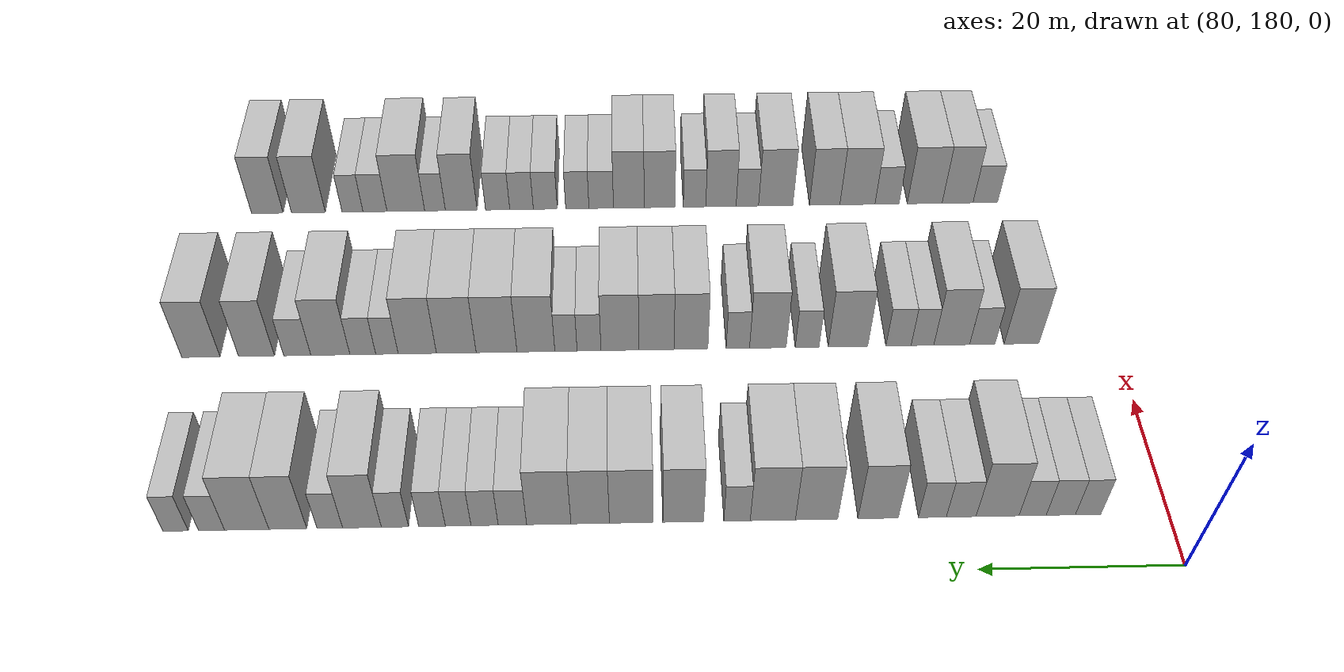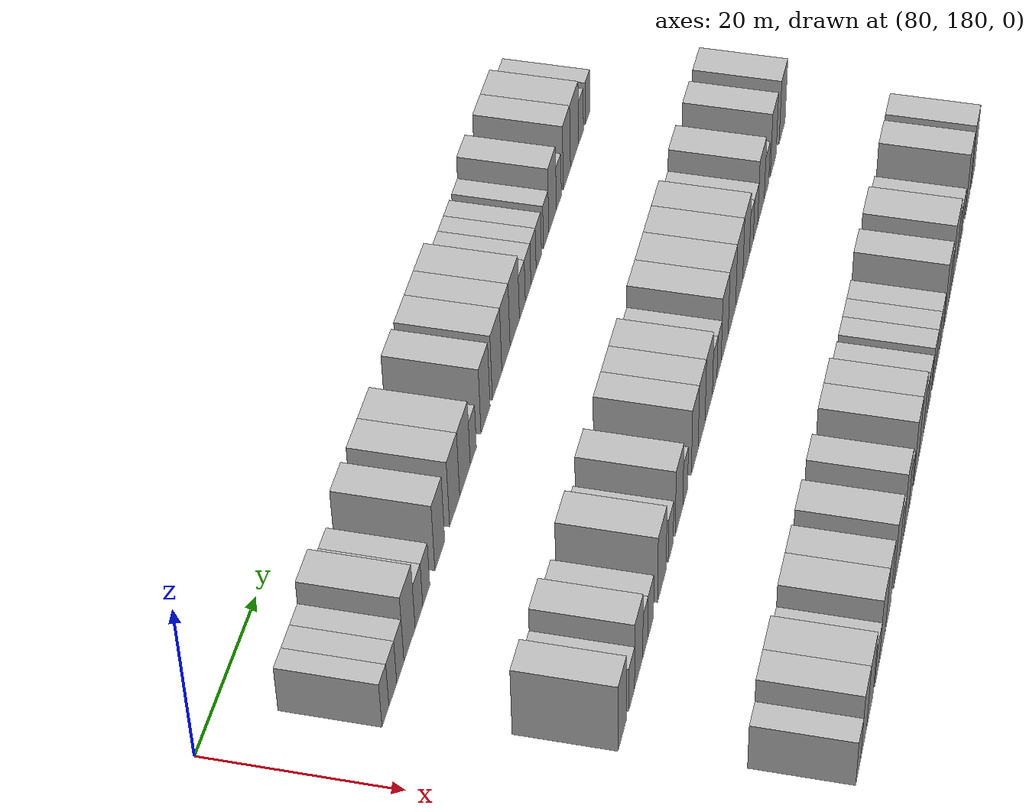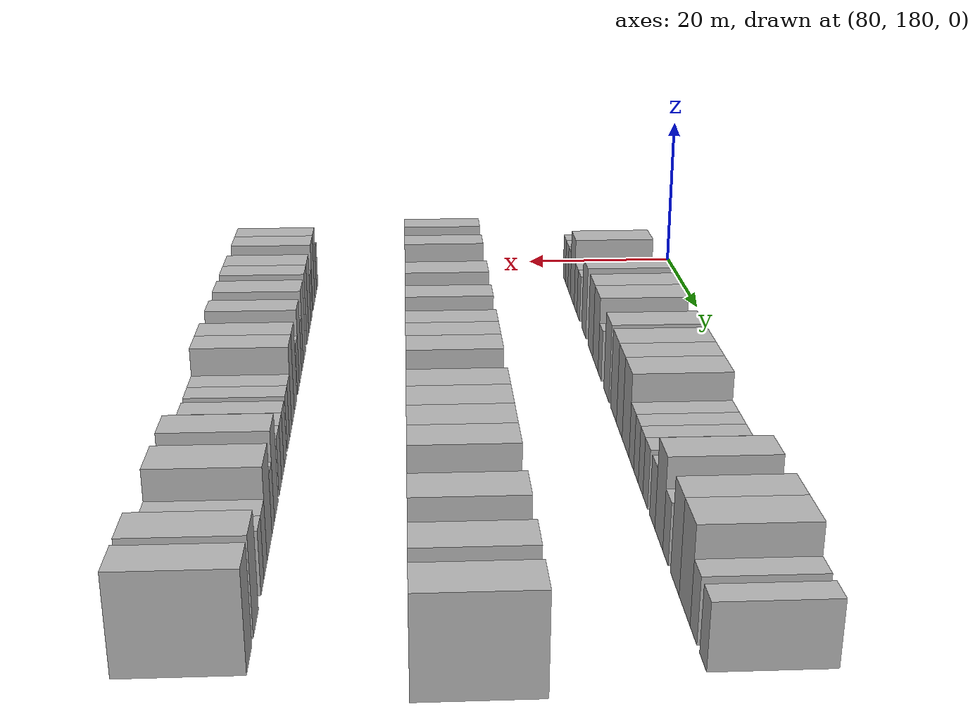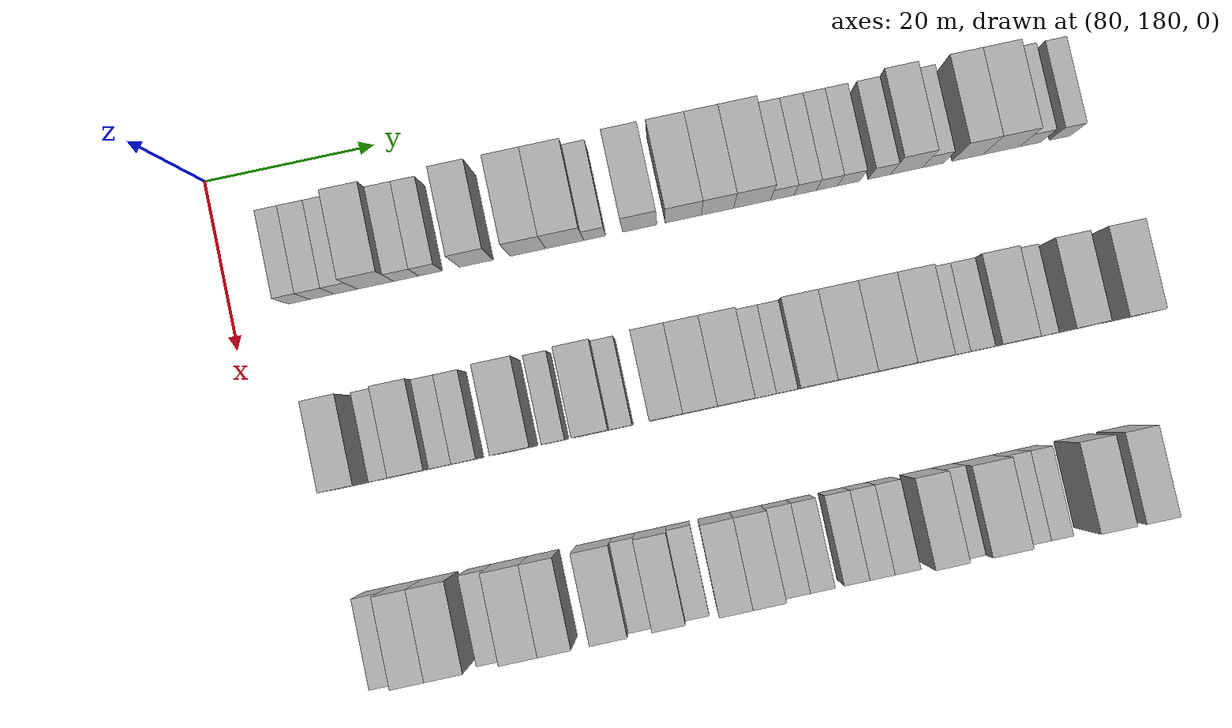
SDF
<sdf version="1.6">
 <world name="default">
  <model name="building_733">
   <static>1</static>
   <pose>91.0000 188.0215 0 0.000000 0.000000 0.000000</pose>
   <link name="link">
    <pose>0 0 3.00 0 0 0</pose>
    <collision name="collision"><geometry><box><size>10.0000 2.5290 6.0000</size></box></geometry></collision>
    <visual name="visual">
     <cast_shadows>0</cast_shadows>
     <geometry><box><size>10.0000 2.5290 6.0000</size></box></geometry>
     <material>
      <script>
       <uri>model://HANNAS_wall/materials/scripts</uri>
       <uri>model://HANNAS_wall/materials/textures</uri>
       <name>vrc/HANNAS_wall</name>
      </script>
     </material>
    </visual>
   </link>
  </model>
  <model name="building_734">
   <static>1</static>
   <pose>91.0000 190.7353 0 0.000000 0.000000 0.000000</pose>
   <link name="link">
    <pose>0 0 3.00 0 0 0</pose>
    <collision name="collision"><geometry><box><size>10.0000 2.8986 6.0000</size></box></geometry></collision>
    <visual name="visual">
     <cast_shadows>0</cast_shadows>
     <geometry><box><size>10.0000 2.8986 6.0000</size></box></geometry>
     <material>
      <script>
       <uri>model://HANNAS_wall/materials/scripts</uri>
       <uri>model://HANNAS_wall/materials/textures</uri>
       <name>vrc/HANNAS_wall</name>
      </script>
     </material>
    </visual>
   </link>
  </model>
  <model name="building_735">
   <static>1</static>
   <pose>91.0000 193.5377 0 0.000000 0.000000 0.000000</pose>
   <link name="link">
    <pose>0 0 3.00 0 0 0</pose>
    <collision name="collision"><geometry><box><size>10.0000 2.7062 6.0000</size></box></geometry></collision>
    <visual name="visual">
     <cast_shadows>0</cast_shadows>
     <geometry><box><size>10.0000 2.7062 6.0000</size></box></geometry>
     <material>
      <script>
       <uri>model://HANNAS_wall/materials/scripts</uri>
       <uri>model://HANNAS_wall/materials/textures</uri>
       <name>vrc/HANNAS_wall</name>
      </script>
     </material>
    </visual>
   </link>
  </model>
  <model name="building_736">
   <static>1</static>
   <pose>91.0000 197.0207 0 0.000000 0.000000 0.000000</pose>
   <link name="link">
    <pose>0 0 4.50 0 0 0</pose>
    <collision name="collision"><geometry><box><size>10.0000 4.2599 9.0000</size></box></geometry></collision>
    <visual name="visual">
     <cast_shadows>0</cast_shadows>
     <geometry><box><size>10.0000 4.2599 9.0000</size></box></geometry>
     <material>
      <script>
       <uri>model://HANNAS_wall/materials/scripts</uri>
       <uri>model://HANNAS_wall/materials/textures</uri>
       <name>vrc/HANNAS_wall</name>
      </script>
     </material>
    </visual>
   </link>
  </model>
  <model name="building_737">
   <static>1</static>
   <pose>91.0000 200.6215 0 0.000000 0.000000 0.000000</pose>
   <link name="link">
    <pose>0 0 3.00 0 0 0</pose>
    <collision name="collision"><geometry><box><size>10.0000 2.9417 6.0000</size></box></geometry></collision>
    <visual name="visual">
     <cast_shadows>0</cast_shadows>
     <geometry><box><size>10.0000 2.9417 6.0000</size></box></geometry>
     <material>
      <script>
       <uri>model://HANNAS_wall/materials/scripts</uri>
       <uri>model://HANNAS_wall/materials/textures</uri>
       <name>vrc/HANNAS_wall</name>
      </script>
     </material>
    </visual>
   </link>
  </model>
  <model name="building_738">
   <static>1</static>
   <pose>91.0000 203.4762 0 0.000000 0.000000 0.000000</pose>
   <link name="link">
    <pose>0 0 3.00 0 0 0</pose>
    <collision name="collision"><geometry><box><size>10.0000 2.7677 6.0000</size></box></geometry></collision>
    <visual name="visual">
     <cast_shadows>0</cast_shadows>
     <geometry><box><size>10.0000 2.7677 6.0000</size></box></geometry>
     <material>
      <script>
       <uri>model://HANNAS_wall/materials/scripts</uri>
       <uri>model://HANNAS_wall/materials/textures</uri>
       <name>vrc/HANNAS_wall</name>
      </script>
     </material>
    </visual>
   </link>
  </model>
  <model name="building_739">
   <static>1</static>
   <pose>91.0000 208.8545 0 0.000000 0.000000 0.000000</pose>
   <link name="link">
    <pose>0 0 4.50 0 0 0</pose>
    <collision name="collision"><geometry><box><size>10.0000 3.9889 9.0000</size></box></geometry></collision>
    <visual name="visual">
     <cast_shadows>0</cast_shadows>
     <geometry><box><size>10.0000 3.9889 9.0000</size></box></geometry>
     <material>
      <script>
       <uri>model://HANNAS_wall/materials/scripts</uri>
       <uri>model://HANNAS_wall/materials/textures</uri>
       <name>vrc/HANNAS_wall</name>
      </script>
     </material>
    </visual>
   </link>
  </model>
  <model name="building_740">
   <static>1</static>
   <pose>91.0000 214.9340 0 0.000000 0.000000 0.000000</pose>
   <link name="link">
    <pose>0 0 4.50 0 0 0</pose>
    <collision name="collision"><geometry><box><size>10.0000 4.1702 9.0000</size></box></geometry></collision>
    <visual name="visual">
     <cast_shadows>0</cast_shadows>
     <geometry><box><size>10.0000 4.1702 9.0000</size></box></geometry>
     <material>
      <script>
       <uri>model://HANNAS_wall/materials/scripts</uri>
       <uri>model://HANNAS_wall/materials/textures</uri>
       <name>vrc/HANNAS_wall</name>
      </script>
     </material>
    </visual>
   </link>
  </model>
  <model name="building_741">
   <static>1</static>
   <pose>91.0000 219.2522 0 0.000000 0.000000 0.000000</pose>
   <link name="link">
    <pose>0 0 4.50 0 0 0</pose>
    <collision name="collision"><geometry><box><size>10.0000 4.4662 9.0000</size></box></geometry></collision>
    <visual name="visual">
     <cast_shadows>0</cast_shadows>
     <geometry><box><size>10.0000 4.4662 9.0000</size></box></geometry>
     <material>
      <script>
       <uri>model://HANNAS_wall/materials/scripts</uri>
       <uri>model://HANNAS_wall/materials/textures</uri>
       <name>vrc/HANNAS_wall</name>
      </script>
     </material>
    </visual>
   </link>
  </model>
  <model name="building_742">
   <static>1</static>
   <pose>91.0000 222.7854 0 0.000000 0.000000 0.000000</pose>
   <link name="link">
    <pose>0 0 3.00 0 0 0</pose>
    <collision name="collision"><geometry><box><size>10.0000 2.6002 6.0000</size></box></geometry></collision>
    <visual name="visual">
     <cast_shadows>0</cast_shadows>
     <geometry><box><size>10.0000 2.6002 6.0000</size></box></geometry>
     <material>
      <script>
       <uri>model://HANNAS_wall/materials/scripts</uri>
       <uri>model://HANNAS_wall/materials/textures</uri>
       <name>vrc/HANNAS_wall</name>
      </script>
     </material>
    </visual>
   </link>
  </model>
  <model name="building_743">
   <static>1</static>
   <pose>91.0000 228.0928 0 0.000000 0.000000 0.000000</pose>
   <link name="link">
    <pose>0 0 4.50 0 0 0</pose>
    <collision name="collision"><geometry><box><size>10.0000 4.0147 9.0000</size></box></geometry></collision>
    <visual name="visual">
     <cast_shadows>0</cast_shadows>
     <geometry><box><size>10.0000 4.0147 9.0000</size></box></geometry>
     <material>
      <script>
       <uri>model://HANNAS_wall/materials/scripts</uri>
       <uri>model://HANNAS_wall/materials/textures</uri>
       <name>vrc/HANNAS_wall</name>
      </script>
     </material>
    </visual>
   </link>
  </model>
  <model name="building_744">
   <static>1</static>
   <pose>91.0000 233.2284 0 0.000000 0.000000 0.000000</pose>
   <link name="link">
    <pose>0 0 4.50 0 0 0</pose>
    <collision name="collision"><geometry><box><size>10.0000 4.2566 9.0000</size></box></geometry></collision>
    <visual name="visual">
     <cast_shadows>0</cast_shadows>
     <geometry><box><size>10.0000 4.2566 9.0000</size></box></geometry>
     <material>
      <script>
       <uri>model://HANNAS_wall/materials/scripts</uri>
       <uri>model://HANNAS_wall/materials/textures</uri>
       <name>vrc/HANNAS_wall</name>
      </script>
     </material>
    </visual>
   </link>
  </model>
  <model name="building_745">
   <static>1</static>
   <pose>91.0000 237.2494 0 0.000000 0.000000 0.000000</pose>
   <link name="link">
    <pose>0 0 4.50 0 0 0</pose>
    <collision name="collision"><geometry><box><size>10.0000 3.7855 9.0000</size></box></geometry></collision>
    <visual name="visual">
     <cast_shadows>0</cast_shadows>
     <geometry><box><size>10.0000 3.7855 9.0000</size></box></geometry>
     <material>
      <script>
       <uri>model://HANNAS_wall/materials/scripts</uri>
       <uri>model://HANNAS_wall/materials/textures</uri>
       <name>vrc/HANNAS_wall</name>
      </script>
     </material>
    </visual>
   </link>
  </model>
  <model name="building_746">
   <static>1</static>
   <pose>91.0000 241.3184 0 0.000000 0.000000 0.000000</pose>
   <link name="link">
    <pose>0 0 4.50 0 0 0</pose>
    <collision name="collision"><geometry><box><size>10.0000 4.3525 9.0000</size></box></geometry></collision>
    <visual name="visual">
     <cast_shadows>0</cast_shadows>
     <geometry><box><size>10.0000 4.3525 9.0000</size></box></geometry>
     <material>
      <script>
       <uri>model://HANNAS_wall/materials/scripts</uri>
       <uri>model://HANNAS_wall/materials/textures</uri>
       <name>vrc/HANNAS_wall</name>
      </script>
     </material>
    </visual>
   </link>
  </model>
  <model name="building_747">
   <static>1</static>
   <pose>91.0000 244.8905 0 0.000000 0.000000 0.000000</pose>
   <link name="link">
    <pose>0 0 3.00 0 0 0</pose>
    <collision name="collision"><geometry><box><size>10.0000 2.7918 6.0000</size></box></geometry></collision>
    <visual name="visual">
     <cast_shadows>0</cast_shadows>
     <geometry><box><size>10.0000 2.7918 6.0000</size></box></geometry>
     <material>
      <script>
       <uri>model://HANNAS_wall/materials/scripts</uri>
       <uri>model://HANNAS_wall/materials/textures</uri>
       <name>vrc/HANNAS_wall</name>
      </script>
     </material>
    </visual>
   </link>
  </model>
  <model name="building_748">
   <static>1</static>
   <pose>91.0000 247.6210 0 0.000000 0.000000 0.000000</pose>
   <link name="link">
    <pose>0 0 3.00 0 0 0</pose>
    <collision name="collision"><geometry><box><size>10.0000 2.6692 6.0000</size></box></geometry></collision>
    <visual name="visual">
     <cast_shadows>0</cast_shadows>
     <geometry><box><size>10.0000 2.6692 6.0000</size></box></geometry>
     <material>
      <script>
       <uri>model://HANNAS_wall/materials/scripts</uri>
       <uri>model://HANNAS_wall/materials/textures</uri>
       <name>vrc/HANNAS_wall</name>
      </script>
     </material>
    </visual>
   </link>
  </model>
  <model name="building_749">
   <static>1</static>
   <pose>91.0000 250.2139 0 0.000000 0.000000 0.000000</pose>
   <link name="link">
    <pose>0 0 3.00 0 0 0</pose>
    <collision name="collision"><geometry><box><size>10.0000 2.5166 6.0000</size></box></geometry></collision>
    <visual name="visual">
     <cast_shadows>0</cast_shadows>
     <geometry><box><size>10.0000 2.5166 6.0000</size></box></geometry>
     <material>
      <script>
       <uri>model://HANNAS_wall/materials/scripts</uri>
       <uri>model://HANNAS_wall/materials/textures</uri>
       <name>vrc/HANNAS_wall</name>
      </script>
     </material>
    </visual>
   </link>
  </model>
  <model name="building_750">
   <static>1</static>
   <pose>91.0000 252.7789 0 0.000000 0.000000 0.000000</pose>
   <link name="link">
    <pose>0 0 3.00 0 0 0</pose>
    <collision name="collision"><geometry><box><size>10.0000 2.6133 6.0000</size></box></geometry></collision>
    <visual name="visual">
     <cast_shadows>0</cast_shadows>
     <geometry><box><size>10.0000 2.6133 6.0000</size></box></geometry>
     <material>
      <script>
       <uri>model://HANNAS_wall/materials/scripts</uri>
       <uri>model://HANNAS_wall/materials/textures</uri>
       <name>vrc/HANNAS_wall</name>
      </script>
     </material>
    </visual>
   </link>
  </model>
  <model name="building_751">
   <static>1</static>
   <pose>91.0000 256.4146 0 0.000000 0.000000 0.000000</pose>
   <link name="link">
    <pose>0 0 3.00 0 0 0</pose>
    <collision name="collision"><geometry><box><size>10.0000 2.6583 6.0000</size></box></geometry></collision>
    <visual name="visual">
     <cast_shadows>0</cast_shadows>
     <geometry><box><size>10.0000 2.6583 6.0000</size></box></geometry>
     <material>
      <script>
       <uri>model://HANNAS_wall/materials/scripts</uri>
       <uri>model://HANNAS_wall/materials/textures</uri>
       <name>vrc/HANNAS_wall</name>
      </script>
     </material>
    </visual>
   </link>
  </model>
  <model name="building_752">
   <static>1</static>
   <pose>91.0000 259.6410 0 0.000000 0.000000 0.000000</pose>
   <link name="link">
    <pose>0 0 4.50 0 0 0</pose>
    <collision name="collision"><geometry><box><size>10.0000 3.7944 9.0000</size></box></geometry></collision>
    <visual name="visual">
     <cast_shadows>0</cast_shadows>
     <geometry><box><size>10.0000 3.7944 9.0000</size></box></geometry>
     <material>
      <script>
       <uri>model://HANNAS_wall/materials/scripts</uri>
       <uri>model://HANNAS_wall/materials/textures</uri>
       <name>vrc/HANNAS_wall</name>
      </script>
     </material>
    </visual>
   </link>
  </model>
  <model name="building_753">
   <static>1</static>
   <pose>91.0000 262.7910 0 0.000000 0.000000 0.000000</pose>
   <link name="link">
    <pose>0 0 3.00 0 0 0</pose>
    <collision name="collision"><geometry><box><size>10.0000 2.5055 6.0000</size></box></geometry></collision>
    <visual name="visual">
     <cast_shadows>0</cast_shadows>
     <geometry><box><size>10.0000 2.5055 6.0000</size></box></geometry>
     <material>
      <script>
       <uri>model://HANNAS_wall/materials/scripts</uri>
       <uri>model://HANNAS_wall/materials/textures</uri>
       <name>vrc/HANNAS_wall</name>
      </script>
     </material>
    </visual>
   </link>
  </model>
  <model name="building_754">
   <static>1</static>
   <pose>91.0000 266.8907 0 0.000000 0.000000 0.000000</pose>
   <link name="link">
    <pose>0 0 4.50 0 0 0</pose>
    <collision name="collision"><geometry><box><size>10.0000 3.6940 9.0000</size></box></geometry></collision>
    <visual name="visual">
     <cast_shadows>0</cast_shadows>
     <geometry><box><size>10.0000 3.6940 9.0000</size></box></geometry>
     <material>
      <script>
       <uri>model://HANNAS_wall/materials/scripts</uri>
       <uri>model://HANNAS_wall/materials/textures</uri>
       <name>vrc/HANNAS_wall</name>
      </script>
     </material>
    </visual>
   </link>
  </model>
  <model name="building_755">
   <static>1</static>
   <pose>91.0000 270.9099 0 0.000000 0.000000 0.000000</pose>
   <link name="link">
    <pose>0 0 4.50 0 0 0</pose>
    <collision name="collision"><geometry><box><size>10.0000 4.3444 9.0000</size></box></geometry></collision>
    <visual name="visual">
     <cast_shadows>0</cast_shadows>
     <geometry><box><size>10.0000 4.3444 9.0000</size></box></geometry>
     <material>
      <script>
       <uri>model://HANNAS_wall/materials/scripts</uri>
       <uri>model://HANNAS_wall/materials/textures</uri>
       <name>vrc/HANNAS_wall</name>
      </script>
     </material>
    </visual>
   </link>
  </model>
  <model name="building_756">
   <static>1</static>
   <pose>91.0000 274.3528 0 0.000000 0.000000 0.000000</pose>
   <link name="link">
    <pose>0 0 3.00 0 0 0</pose>
    <collision name="collision"><geometry><box><size>10.0000 2.5415 6.0000</size></box></geometry></collision>
    <visual name="visual">
     <cast_shadows>0</cast_shadows>
     <geometry><box><size>10.0000 2.5415 6.0000</size></box></geometry>
     <material>
      <script>
       <uri>model://HANNAS_wall/materials/scripts</uri>
       <uri>model://HANNAS_wall/materials/textures</uri>
       <name>vrc/HANNAS_wall</name>
      </script>
     </material>
    </visual>
   </link>
  </model>
  <model name="building_757">
   <static>1</static>
   <pose>91.0000 277.8508 0 0.000000 0.000000 0.000000</pose>
   <link name="link">
    <pose>0 0 3.00 0 0 0</pose>
    <collision name="collision"><geometry><box><size>10.0000 2.4544 6.0000</size></box></geometry></collision>
    <visual name="visual">
     <cast_shadows>0</cast_shadows>
     <geometry><box><size>10.0000 2.4544 6.0000</size></box></geometry>
     <material>
      <script>
       <uri>model://HANNAS_wall/materials/scripts</uri>
       <uri>model://HANNAS_wall/materials/textures</uri>
       <name>vrc/HANNAS_wall</name>
      </script>
     </material>
    </visual>
   </link>
  </model>
  <model name="building_935">
   <static>1</static>
   <pose>113.0000 190.2759 0 0.000000 0.000000 0.000000</pose>
   <link name="link">
    <pose>0 0 4.50 0 0 0</pose>
    <collision name="collision"><geometry><box><size>10.0000 3.8291 9.0000</size></box></geometry></collision>
    <visual name="visual">
     <cast_shadows>0</cast_shadows>
     <geometry><box><size>10.0000 3.8291 9.0000</size></box></geometry>
     <material>
      <script>
       <uri>model://HANNAS_wall/materials/scripts</uri>
       <uri>model://HANNAS_wall/materials/textures</uri>
       <name>vrc/HANNAS_wall</name>
      </script>
     </material>
    </visual>
   </link>
  </model>
  <model name="building_936">
   <static>1</static>
   <pose>113.0000 194.5804 0 0.000000 0.000000 0.000000</pose>
   <link name="link">
    <pose>0 0 3.00 0 0 0</pose>
    <collision name="collision"><geometry><box><size>10.0000 2.7800 6.0000</size></box></geometry></collision>
    <visual name="visual">
     <cast_shadows>0</cast_shadows>
     <geometry><box><size>10.0000 2.7800 6.0000</size></box></geometry>
     <material>
      <script>
       <uri>model://HANNAS_wall/materials/scripts</uri>
       <uri>model://HANNAS_wall/materials/textures</uri>
       <name>vrc/HANNAS_wall</name>
      </script>
     </material>
    </visual>
   </link>
  </model>
  <model name="building_937">
   <static>1</static>
   <pose>113.0000 197.9368 0 0.000000 0.000000 0.000000</pose>
   <link name="link">
    <pose>0 0 4.50 0 0 0</pose>
    <collision name="collision"><geometry><box><size>10.0000 3.9327 9.0000</size></box></geometry></collision>
    <visual name="visual">
     <cast_shadows>0</cast_shadows>
     <geometry><box><size>10.0000 3.9327 9.0000</size></box></geometry>
     <material>
      <script>
       <uri>model://HANNAS_wall/materials/scripts</uri>
       <uri>model://HANNAS_wall/materials/textures</uri>
       <name>vrc/HANNAS_wall</name>
      </script>
     </material>
    </visual>
   </link>
  </model>
  <model name="building_938">
   <static>1</static>
   <pose>113.0000 201.1462 0 0.000000 0.000000 0.000000</pose>
   <link name="link">
    <pose>0 0 3.00 0 0 0</pose>
    <collision name="collision"><geometry><box><size>10.0000 2.4861 6.0000</size></box></geometry></collision>
    <visual name="visual">
     <cast_shadows>0</cast_shadows>
     <geometry><box><size>10.0000 2.4861 6.0000</size></box></geometry>
     <material>
      <script>
       <uri>model://HANNAS_wall/materials/scripts</uri>
       <uri>model://HANNAS_wall/materials/textures</uri>
       <name>vrc/HANNAS_wall</name>
      </script>
     </material>
    </visual>
   </link>
  </model>
  <model name="building_939">
   <static>1</static>
   <pose>113.0000 203.7674 0 0.000000 0.000000 0.000000</pose>
   <link name="link">
    <pose>0 0 3.00 0 0 0</pose>
    <collision name="collision"><geometry><box><size>10.0000 2.7564 6.0000</size></box></geometry></collision>
    <visual name="visual">
     <cast_shadows>0</cast_shadows>
     <geometry><box><size>10.0000 2.7564 6.0000</size></box></geometry>
     <material>
      <script>
       <uri>model://HANNAS_wall/materials/scripts</uri>
       <uri>model://HANNAS_wall/materials/textures</uri>
       <name>vrc/HANNAS_wall</name>
      </script>
     </material>
    </visual>
   </link>
  </model>
  <model name="building_940">
   <static>1</static>
   <pose>113.0000 209.3080 0 0.000000 0.000000 0.000000</pose>
   <link name="link">
    <pose>0 0 4.50 0 0 0</pose>
    <collision name="collision"><geometry><box><size>10.0000 4.3248 9.0000</size></box></geometry></collision>
    <visual name="visual">
     <cast_shadows>0</cast_shadows>
     <geometry><box><size>10.0000 4.3248 9.0000</size></box></geometry>
     <material>
      <script>
       <uri>model://HANNAS_wall/materials/scripts</uri>
       <uri>model://HANNAS_wall/materials/textures</uri>
       <name>vrc/HANNAS_wall</name>
      </script>
     </material>
    </visual>
   </link>
  </model>
  <model name="building_941">
   <static>1</static>
   <pose>113.0000 213.7715 0 0.000000 0.000000 0.000000</pose>
   <link name="link">
    <pose>0 0 3.00 0 0 0</pose>
    <collision name="collision"><geometry><box><size>10.0000 2.6021 6.0000</size></box></geometry></collision>
    <visual name="visual">
     <cast_shadows>0</cast_shadows>
     <geometry><box><size>10.0000 2.6021 6.0000</size></box></geometry>
     <material>
      <script>
       <uri>model://HANNAS_wall/materials/scripts</uri>
       <uri>model://HANNAS_wall/materials/textures</uri>
       <name>vrc/HANNAS_wall</name>
      </script>
     </material>
    </visual>
   </link>
  </model>
  <model name="building_942">
   <static>1</static>
   <pose>113.0000 218.0724 0 0.000000 0.000000 0.000000</pose>
   <link name="link">
    <pose>0 0 4.50 0 0 0</pose>
    <collision name="collision"><geometry><box><size>10.0000 3.9998 9.0000</size></box></geometry></collision>
    <visual name="visual">
     <cast_shadows>0</cast_shadows>
     <geometry><box><size>10.0000 3.9998 9.0000</size></box></geometry>
     <material>
      <script>
       <uri>model://HANNAS_wall/materials/scripts</uri>
       <uri>model://HANNAS_wall/materials/textures</uri>
       <name>vrc/HANNAS_wall</name>
      </script>
     </material>
    </visual>
   </link>
  </model>
  <model name="building_943">
   <static>1</static>
   <pose>113.0000 221.3480 0 0.000000 0.000000 0.000000</pose>
   <link name="link">
    <pose>0 0 3.00 0 0 0</pose>
    <collision name="collision"><geometry><box><size>10.0000 2.5514 6.0000</size></box></geometry></collision>
    <visual name="visual">
     <cast_shadows>0</cast_shadows>
     <geometry><box><size>10.0000 2.5514 6.0000</size></box></geometry>
     <material>
      <script>
       <uri>model://HANNAS_wall/materials/scripts</uri>
       <uri>model://HANNAS_wall/materials/textures</uri>
       <name>vrc/HANNAS_wall</name>
      </script>
     </material>
    </visual>
   </link>
  </model>
  <model name="building_944">
   <static>1</static>
   <pose>113.0000 226.4651 0 0.000000 0.000000 0.000000</pose>
   <link name="link">
    <pose>0 0 4.50 0 0 0</pose>
    <collision name="collision"><geometry><box><size>10.0000 3.6827 9.0000</size></box></geometry></collision>
    <visual name="visual">
     <cast_shadows>0</cast_shadows>
     <geometry><box><size>10.0000 3.6827 9.0000</size></box></geometry>
     <material>
      <script>
       <uri>model://HANNAS_wall/materials/scripts</uri>
       <uri>model://HANNAS_wall/materials/textures</uri>
       <name>vrc/HANNAS_wall</name>
      </script>
     </material>
    </visual>
   </link>
  </model>
  <model name="building_945">
   <static>1</static>
   <pose>113.0000 230.2203 0 0.000000 0.000000 0.000000</pose>
   <link name="link">
    <pose>0 0 4.50 0 0 0</pose>
    <collision name="collision"><geometry><box><size>10.0000 3.8277 9.0000</size></box></geometry></collision>
    <visual name="visual">
     <cast_shadows>0</cast_shadows>
     <geometry><box><size>10.0000 3.8277 9.0000</size></box></geometry>
     <material>
      <script>
       <uri>model://HANNAS_wall/materials/scripts</uri>
       <uri>model://HANNAS_wall/materials/textures</uri>
       <name>vrc/HANNAS_wall</name>
      </script>
     </material>
    </visual>
   </link>
  </model>
  <model name="building_946">
   <static>1</static>
   <pose>113.0000 234.1979 0 0.000000 0.000000 0.000000</pose>
   <link name="link">
    <pose>0 0 4.50 0 0 0</pose>
    <collision name="collision"><geometry><box><size>10.0000 4.1274 9.0000</size></box></geometry></collision>
    <visual name="visual">
     <cast_shadows>0</cast_shadows>
     <geometry><box><size>10.0000 4.1274 9.0000</size></box></geometry>
     <material>
      <script>
       <uri>model://HANNAS_wall/materials/scripts</uri>
       <uri>model://HANNAS_wall/materials/textures</uri>
       <name>vrc/HANNAS_wall</name>
      </script>
     </material>
    </visual>
   </link>
  </model>
  <model name="building_947">
   <static>1</static>
   <pose>113.0000 237.5624 0 0.000000 0.000000 0.000000</pose>
   <link name="link">
    <pose>0 0 3.00 0 0 0</pose>
    <collision name="collision"><geometry><box><size>10.0000 2.6017 6.0000</size></box></geometry></collision>
    <visual name="visual">
     <cast_shadows>0</cast_shadows>
     <geometry><box><size>10.0000 2.6017 6.0000</size></box></geometry>
     <material>
      <script>
       <uri>model://HANNAS_wall/materials/scripts</uri>
       <uri>model://HANNAS_wall/materials/textures</uri>
       <name>vrc/HANNAS_wall</name>
      </script>
     </material>
    </visual>
   </link>
  </model>
  <model name="building_948">
   <static>1</static>
   <pose>113.0000 240.0730 0 0.000000 0.000000 0.000000</pose>
   <link name="link">
    <pose>0 0 3.00 0 0 0</pose>
    <collision name="collision"><geometry><box><size>10.0000 2.4197 6.0000</size></box></geometry></collision>
    <visual name="visual">
     <cast_shadows>0</cast_shadows>
     <geometry><box><size>10.0000 2.4197 6.0000</size></box></geometry>
     <material>
      <script>
       <uri>model://HANNAS_wall/materials/scripts</uri>
       <uri>model://HANNAS_wall/materials/textures</uri>
       <name>vrc/HANNAS_wall</name>
      </script>
     </material>
    </visual>
   </link>
  </model>
  <model name="building_949">
   <static>1</static>
   <pose>113.0000 243.3391 0 0.000000 0.000000 0.000000</pose>
   <link name="link">
    <pose>0 0 4.50 0 0 0</pose>
    <collision name="collision"><geometry><box><size>10.0000 4.1124 9.0000</size></box></geometry></collision>
    <visual name="visual">
     <cast_shadows>0</cast_shadows>
     <geometry><box><size>10.0000 4.1124 9.0000</size></box></geometry>
     <material>
      <script>
       <uri>model://HANNAS_wall/materials/scripts</uri>
       <uri>model://HANNAS_wall/materials/textures</uri>
       <name>vrc/HANNAS_wall</name>
      </script>
     </material>
    </visual>
   </link>
  </model>
  <model name="building_950">
   <static>1</static>
   <pose>113.0000 247.6153 0 0.000000 0.000000 0.000000</pose>
   <link name="link">
    <pose>0 0 4.50 0 0 0</pose>
    <collision name="collision"><geometry><box><size>10.0000 4.4400 9.0000</size></box></geometry></collision>
    <visual name="visual">
     <cast_shadows>0</cast_shadows>
     <geometry><box><size>10.0000 4.4400 9.0000</size></box></geometry>
     <material>
      <script>
       <uri>model://HANNAS_wall/materials/scripts</uri>
       <uri>model://HANNAS_wall/materials/textures</uri>
       <name>vrc/HANNAS_wall</name>
      </script>
     </material>
    </visual>
   </link>
  </model>
  <model name="building_951">
   <static>1</static>
   <pose>113.0000 251.9933 0 0.000000 0.000000 0.000000</pose>
   <link name="link">
    <pose>0 0 4.50 0 0 0</pose>
    <collision name="collision"><geometry><box><size>10.0000 4.3162 9.0000</size></box></geometry></collision>
    <visual name="visual">
     <cast_shadows>0</cast_shadows>
     <geometry><box><size>10.0000 4.3162 9.0000</size></box></geometry>
     <material>
      <script>
       <uri>model://HANNAS_wall/materials/scripts</uri>
       <uri>model://HANNAS_wall/materials/textures</uri>
       <name>vrc/HANNAS_wall</name>
      </script>
     </material>
    </visual>
   </link>
  </model>
  <model name="building_952">
   <static>1</static>
   <pose>113.0000 256.2262 0 0.000000 0.000000 0.000000</pose>
   <link name="link">
    <pose>0 0 4.50 0 0 0</pose>
    <collision name="collision"><geometry><box><size>10.0000 4.1495 9.0000</size></box></geometry></collision>
    <visual name="visual">
     <cast_shadows>0</cast_shadows>
     <geometry><box><size>10.0000 4.1495 9.0000</size></box></geometry>
     <material>
      <script>
       <uri>model://HANNAS_wall/materials/scripts</uri>
       <uri>model://HANNAS_wall/materials/textures</uri>
       <name>vrc/HANNAS_wall</name>
      </script>
     </material>
    </visual>
   </link>
  </model>
  <model name="building_953">
   <static>1</static>
   <pose>113.0000 259.5175 0 0.000000 0.000000 0.000000</pose>
   <link name="link">
    <pose>0 0 3.00 0 0 0</pose>
    <collision name="collision"><geometry><box><size>10.0000 2.4332 6.0000</size></box></geometry></collision>
    <visual name="visual">
     <cast_shadows>0</cast_shadows>
     <geometry><box><size>10.0000 2.4332 6.0000</size></box></geometry>
     <material>
      <script>
       <uri>model://HANNAS_wall/materials/scripts</uri>
       <uri>model://HANNAS_wall/materials/textures</uri>
       <name>vrc/HANNAS_wall</name>
      </script>
     </material>
    </visual>
   </link>
  </model>
  <model name="building_954">
   <static>1</static>
   <pose>113.0000 262.1321 0 0.000000 0.000000 0.000000</pose>
   <link name="link">
    <pose>0 0 3.00 0 0 0</pose>
    <collision name="collision"><geometry><box><size>10.0000 2.7959 6.0000</size></box></geometry></collision>
    <visual name="visual">
     <cast_shadows>0</cast_shadows>
     <geometry><box><size>10.0000 2.7959 6.0000</size></box></geometry>
     <material>
      <script>
       <uri>model://HANNAS_wall/materials/scripts</uri>
       <uri>model://HANNAS_wall/materials/textures</uri>
       <name>vrc/HANNAS_wall</name>
      </script>
     </material>
    </visual>
   </link>
  </model>
  <model name="building_955">
   <static>1</static>
   <pose>113.0000 265.6449 0 0.000000 0.000000 0.000000</pose>
   <link name="link">
    <pose>0 0 4.50 0 0 0</pose>
    <collision name="collision"><geometry><box><size>10.0000 4.2296 9.0000</size></box></geometry></collision>
    <visual name="visual">
     <cast_shadows>0</cast_shadows>
     <geometry><box><size>10.0000 4.2296 9.0000</size></box></geometry>
     <material>
      <script>
       <uri>model://HANNAS_wall/materials/scripts</uri>
       <uri>model://HANNAS_wall/materials/textures</uri>
       <name>vrc/HANNAS_wall</name>
      </script>
     </material>
    </visual>
   </link>
  </model>
  <model name="building_956">
   <static>1</static>
   <pose>113.0000 269.2289 0 0.000000 0.000000 0.000000</pose>
   <link name="link">
    <pose>0 0 3.00 0 0 0</pose>
    <collision name="collision"><geometry><box><size>10.0000 2.9384 6.0000</size></box></geometry></collision>
    <visual name="visual">
     <cast_shadows>0</cast_shadows>
     <geometry><box><size>10.0000 2.9384 6.0000</size></box></geometry>
     <material>
      <script>
       <uri>model://HANNAS_wall/materials/scripts</uri>
       <uri>model://HANNAS_wall/materials/textures</uri>
       <name>vrc/HANNAS_wall</name>
      </script>
     </material>
    </visual>
   </link>
  </model>
  <model name="building_957">
   <static>1</static>
   <pose>113.0000 273.6402 0 0.000000 0.000000 0.000000</pose>
   <link name="link">
    <pose>0 0 4.50 0 0 0</pose>
    <collision name="collision"><geometry><box><size>10.0000 3.8841 9.0000</size></box></geometry></collision>
    <visual name="visual">
     <cast_shadows>0</cast_shadows>
     <geometry><box><size>10.0000 3.8841 9.0000</size></box></geometry>
     <material>
      <script>
       <uri>model://HANNAS_wall/materials/scripts</uri>
       <uri>model://HANNAS_wall/materials/textures</uri>
       <name>vrc/HANNAS_wall</name>
      </script>
     </material>
    </visual>
   </link>
  </model>
  <model name="building_958">
   <static>1</static>
   <pose>113.0000 279.6462 0 0.000000 0.000000 0.000000</pose>
   <link name="link">
    <pose>0 0 4.50 0 0 0</pose>
    <collision name="collision"><geometry><box><size>10.0000 4.1279 9.0000</size></box></geometry></collision>
    <visual name="visual">
     <cast_shadows>0</cast_shadows>
     <geometry><box><size>10.0000 4.1279 9.0000</size></box></geometry>
     <material>
      <script>
       <uri>model://HANNAS_wall/materials/scripts</uri>
       <uri>model://HANNAS_wall/materials/textures</uri>
       <name>vrc/HANNAS_wall</name>
      </script>
     </material>
    </visual>
   </link>
  </model>
  <model name="building_1125">
   <static>1</static>
   <pose>135.0000 190.2754 0 0.000000 0.000000 0.000000</pose>
   <link name="link">
    <pose>0 0 3.00 0 0 0</pose>
    <collision name="collision"><geometry><box><size>10.0000 2.9490 6.0000</size></box></geometry></collision>
    <visual name="visual">
     <cast_shadows>0</cast_shadows>
     <geometry><box><size>10.0000 2.9490 6.0000</size></box></geometry>
     <material>
      <script>
       <uri>model://HANNAS_wall/materials/scripts</uri>
       <uri>model://HANNAS_wall/materials/textures</uri>
       <name>vrc/HANNAS_wall</name>
      </script>
     </material>
    </visual>
   </link>
  </model>
  <model name="building_1126">
   <static>1</static>
   <pose>135.0000 193.6110 0 0.000000 0.000000 0.000000</pose>
   <link name="link">
    <pose>0 0 4.50 0 0 0</pose>
    <collision name="collision"><geometry><box><size>10.0000 3.7221 9.0000</size></box></geometry></collision>
    <visual name="visual">
     <cast_shadows>0</cast_shadows>
     <geometry><box><size>10.0000 3.7221 9.0000</size></box></geometry>
     <material>
      <script>
       <uri>model://HANNAS_wall/materials/scripts</uri>
       <uri>model://HANNAS_wall/materials/textures</uri>
       <name>vrc/HANNAS_wall</name>
      </script>
     </material>
    </visual>
   </link>
  </model>
  <model name="building_1127">
   <static>1</static>
   <pose>135.0000 197.5650 0 0.000000 0.000000 0.000000</pose>
   <link name="link">
    <pose>0 0 4.50 0 0 0</pose>
    <collision name="collision"><geometry><box><size>10.0000 4.1859 9.0000</size></box></geometry></collision>
    <visual name="visual">
     <cast_shadows>0</cast_shadows>
     <geometry><box><size>10.0000 4.1859 9.0000</size></box></geometry>
     <material>
      <script>
       <uri>model://HANNAS_wall/materials/scripts</uri>
       <uri>model://HANNAS_wall/materials/textures</uri>
       <name>vrc/HANNAS_wall</name>
      </script>
     </material>
    </visual>
   </link>
  </model>
  <model name="building_1128">
   <static>1</static>
   <pose>135.0000 202.0967 0 0.000000 0.000000 0.000000</pose>
   <link name="link">
    <pose>0 0 3.00 0 0 0</pose>
    <collision name="collision"><geometry><box><size>10.0000 2.8776 6.0000</size></box></geometry></collision>
    <visual name="visual">
     <cast_shadows>0</cast_shadows>
     <geometry><box><size>10.0000 2.8776 6.0000</size></box></geometry>
     <material>
      <script>
       <uri>model://HANNAS_wall/materials/scripts</uri>
       <uri>model://HANNAS_wall/materials/textures</uri>
       <name>vrc/HANNAS_wall</name>
      </script>
     </material>
    </visual>
   </link>
  </model>
  <model name="building_1129">
   <static>1</static>
   <pose>135.0000 205.6405 0 0.000000 0.000000 0.000000</pose>
   <link name="link">
    <pose>0 0 4.50 0 0 0</pose>
    <collision name="collision"><geometry><box><size>10.0000 4.2099 9.0000</size></box></geometry></collision>
    <visual name="visual">
     <cast_shadows>0</cast_shadows>
     <geometry><box><size>10.0000 4.2099 9.0000</size></box></geometry>
     <material>
      <script>
       <uri>model://HANNAS_wall/materials/scripts</uri>
       <uri>model://HANNAS_wall/materials/textures</uri>
       <name>vrc/HANNAS_wall</name>
      </script>
     </material>
    </visual>
   </link>
  </model>
  <model name="building_1130">
   <static>1</static>
   <pose>135.0000 209.5704 0 0.000000 0.000000 0.000000</pose>
   <link name="link">
    <pose>0 0 4.50 0 0 0</pose>
    <collision name="collision"><geometry><box><size>10.0000 3.6500 9.0000</size></box></geometry></collision>
    <visual name="visual">
     <cast_shadows>0</cast_shadows>
     <geometry><box><size>10.0000 3.6500 9.0000</size></box></geometry>
     <material>
      <script>
       <uri>model://HANNAS_wall/materials/scripts</uri>
       <uri>model://HANNAS_wall/materials/textures</uri>
       <name>vrc/HANNAS_wall</name>
      </script>
     </material>
    </visual>
   </link>
  </model>
  <model name="building_1131">
   <static>1</static>
   <pose>135.0000 215.4499 0 0.000000 0.000000 0.000000</pose>
   <link name="link">
    <pose>0 0 4.50 0 0 0</pose>
    <collision name="collision"><geometry><box><size>10.0000 4.1090 9.0000</size></box></geometry></collision>
    <visual name="visual">
     <cast_shadows>0</cast_shadows>
     <geometry><box><size>10.0000 4.1090 9.0000</size></box></geometry>
     <material>
      <script>
       <uri>model://HANNAS_wall/materials/scripts</uri>
       <uri>model://HANNAS_wall/materials/textures</uri>
       <name>vrc/HANNAS_wall</name>
      </script>
     </material>
    </visual>
   </link>
  </model>
  <model name="building_1132">
   <static>1</static>
   <pose>135.0000 218.8461 0 0.000000 0.000000 0.000000</pose>
   <link name="link">
    <pose>0 0 3.00 0 0 0</pose>
    <collision name="collision"><geometry><box><size>10.0000 2.6834 6.0000</size></box></geometry></collision>
    <visual name="visual">
     <cast_shadows>0</cast_shadows>
     <geometry><box><size>10.0000 2.6834 6.0000</size></box></geometry>
     <material>
      <script>
       <uri>model://HANNAS_wall/materials/scripts</uri>
       <uri>model://HANNAS_wall/materials/textures</uri>
       <name>vrc/HANNAS_wall</name>
      </script>
     </material>
    </visual>
   </link>
  </model>
  <model name="building_1133">
   <static>1</static>
   <pose>135.0000 222.0059 0 0.000000 0.000000 0.000000</pose>
   <link name="link">
    <pose>0 0 4.50 0 0 0</pose>
    <collision name="collision"><geometry><box><size>10.0000 3.6363 9.0000</size></box></geometry></collision>
    <visual name="visual">
     <cast_shadows>0</cast_shadows>
     <geometry><box><size>10.0000 3.6363 9.0000</size></box></geometry>
     <material>
      <script>
       <uri>model://HANNAS_wall/materials/scripts</uri>
       <uri>model://HANNAS_wall/materials/textures</uri>
       <name>vrc/HANNAS_wall</name>
      </script>
     </material>
    </visual>
   </link>
  </model>
  <model name="building_1134">
   <static>1</static>
   <pose>135.0000 225.1646 0 0.000000 0.000000 0.000000</pose>
   <link name="link">
    <pose>0 0 3.00 0 0 0</pose>
    <collision name="collision"><geometry><box><size>10.0000 2.6812 6.0000</size></box></geometry></collision>
    <visual name="visual">
     <cast_shadows>0</cast_shadows>
     <geometry><box><size>10.0000 2.6812 6.0000</size></box></geometry>
     <material>
      <script>
       <uri>model://HANNAS_wall/materials/scripts</uri>
       <uri>model://HANNAS_wall/materials/textures</uri>
       <name>vrc/HANNAS_wall</name>
      </script>
     </material>
    </visual>
   </link>
  </model>
  <model name="building_1135">
   <static>1</static>
   <pose>135.0000 229.3481 0 0.000000 0.000000 0.000000</pose>
   <link name="link">
    <pose>0 0 4.50 0 0 0</pose>
    <collision name="collision"><geometry><box><size>10.0000 3.6859 9.0000</size></box></geometry></collision>
    <visual name="visual">
     <cast_shadows>0</cast_shadows>
     <geometry><box><size>10.0000 3.6859 9.0000</size></box></geometry>
     <material>
      <script>
       <uri>model://HANNAS_wall/materials/scripts</uri>
       <uri>model://HANNAS_wall/materials/textures</uri>
       <name>vrc/HANNAS_wall</name>
      </script>
     </material>
    </visual>
   </link>
  </model>
  <model name="building_1136">
   <static>1</static>
   <pose>135.0000 233.0178 0 0.000000 0.000000 0.000000</pose>
   <link name="link">
    <pose>0 0 4.50 0 0 0</pose>
    <collision name="collision"><geometry><box><size>10.0000 3.6536 9.0000</size></box></geometry></collision>
    <visual name="visual">
     <cast_shadows>0</cast_shadows>
     <geometry><box><size>10.0000 3.6536 9.0000</size></box></geometry>
     <material>
      <script>
       <uri>model://HANNAS_wall/materials/scripts</uri>
       <uri>model://HANNAS_wall/materials/textures</uri>
       <name>vrc/HANNAS_wall</name>
      </script>
     </material>
    </visual>
   </link>
  </model>
  <model name="building_1137">
   <static>1</static>
   <pose>135.0000 236.3116 0 0.000000 0.000000 0.000000</pose>
   <link name="link">
    <pose>0 0 3.00 0 0 0</pose>
    <collision name="collision"><geometry><box><size>10.0000 2.9340 6.0000</size></box></geometry></collision>
    <visual name="visual">
     <cast_shadows>0</cast_shadows>
     <geometry><box><size>10.0000 2.9340 6.0000</size></box></geometry>
     <material>
      <script>
       <uri>model://HANNAS_wall/materials/scripts</uri>
       <uri>model://HANNAS_wall/materials/textures</uri>
       <name>vrc/HANNAS_wall</name>
      </script>
     </material>
    </visual>
   </link>
  </model>
  <model name="building_1138">
   <static>1</static>
   <pose>135.0000 239.1616 0 0.000000 0.000000 0.000000</pose>
   <link name="link">
    <pose>0 0 3.00 0 0 0</pose>
    <collision name="collision"><geometry><box><size>10.0000 2.7660 6.0000</size></box></geometry></collision>
    <visual name="visual">
     <cast_shadows>0</cast_shadows>
     <geometry><box><size>10.0000 2.7660 6.0000</size></box></geometry>
     <material>
      <script>
       <uri>model://HANNAS_wall/materials/scripts</uri>
       <uri>model://HANNAS_wall/materials/textures</uri>
       <name>vrc/HANNAS_wall</name>
      </script>
     </material>
    </visual>
   </link>
  </model>
  <model name="building_1139">
   <static>1</static>
   <pose>135.0000 242.9760 0 0.000000 0.000000 0.000000</pose>
   <link name="link">
    <pose>0 0 3.00 0 0 0</pose>
    <collision name="collision"><geometry><box><size>10.0000 2.8627 6.0000</size></box></geometry></collision>
    <visual name="visual">
     <cast_shadows>0</cast_shadows>
     <geometry><box><size>10.0000 2.8627 6.0000</size></box></geometry>
     <material>
      <script>
       <uri>model://HANNAS_wall/materials/scripts</uri>
       <uri>model://HANNAS_wall/materials/textures</uri>
       <name>vrc/HANNAS_wall</name>
      </script>
     </material>
    </visual>
   </link>
  </model>
  <model name="building_1140">
   <static>1</static>
   <pose>135.0000 245.8119 0 0.000000 0.000000 0.000000</pose>
   <link name="link">
    <pose>0 0 3.00 0 0 0</pose>
    <collision name="collision"><geometry><box><size>10.0000 2.8092 6.0000</size></box></geometry></collision>
    <visual name="visual">
     <cast_shadows>0</cast_shadows>
     <geometry><box><size>10.0000 2.8092 6.0000</size></box></geometry>
     <material>
      <script>
       <uri>model://HANNAS_wall/materials/scripts</uri>
       <uri>model://HANNAS_wall/materials/textures</uri>
       <name>vrc/HANNAS_wall</name>
      </script>
     </material>
    </visual>
   </link>
  </model>
  <model name="building_1141">
   <static>1</static>
   <pose>135.0000 248.6604 0 0.000000 0.000000 0.000000</pose>
   <link name="link">
    <pose>0 0 3.00 0 0 0</pose>
    <collision name="collision"><geometry><box><size>10.0000 2.8878 6.0000</size></box></geometry></collision>
    <visual name="visual">
     <cast_shadows>0</cast_shadows>
     <geometry><box><size>10.0000 2.8878 6.0000</size></box></geometry>
     <material>
      <script>
       <uri>model://HANNAS_wall/materials/scripts</uri>
       <uri>model://HANNAS_wall/materials/textures</uri>
       <name>vrc/HANNAS_wall</name>
      </script>
     </material>
    </visual>
   </link>
  </model>
  <model name="building_1142">
   <static>1</static>
   <pose>135.0000 252.9942 0 0.000000 0.000000 0.000000</pose>
   <link name="link">
    <pose>0 0 4.50 0 0 0</pose>
    <collision name="collision"><geometry><box><size>10.0000 3.7798 9.0000</size></box></geometry></collision>
    <visual name="visual">
     <cast_shadows>0</cast_shadows>
     <geometry><box><size>10.0000 3.7798 9.0000</size></box></geometry>
     <material>
      <script>
       <uri>model://HANNAS_wall/materials/scripts</uri>
       <uri>model://HANNAS_wall/materials/textures</uri>
       <name>vrc/HANNAS_wall</name>
      </script>
     </material>
    </visual>
   </link>
  </model>
  <model name="building_1143">
   <static>1</static>
   <pose>135.0000 256.1166 0 0.000000 0.000000 0.000000</pose>
   <link name="link">
    <pose>0 0 3.00 0 0 0</pose>
    <collision name="collision"><geometry><box><size>10.0000 2.4650 6.0000</size></box></geometry></collision>
    <visual name="visual">
     <cast_shadows>0</cast_shadows>
     <geometry><box><size>10.0000 2.4650 6.0000</size></box></geometry>
     <material>
      <script>
       <uri>model://HANNAS_wall/materials/scripts</uri>
       <uri>model://HANNAS_wall/materials/textures</uri>
       <name>vrc/HANNAS_wall</name>
      </script>
     </material>
    </visual>
   </link>
  </model>
  <model name="building_1144">
   <static>1</static>
   <pose>135.0000 259.5897 0 0.000000 0.000000 0.000000</pose>
   <link name="link">
    <pose>0 0 4.50 0 0 0</pose>
    <collision name="collision"><geometry><box><size>10.0000 4.4812 9.0000</size></box></geometry></collision>
    <visual name="visual">
     <cast_shadows>0</cast_shadows>
     <geometry><box><size>10.0000 4.4812 9.0000</size></box></geometry>
     <material>
      <script>
       <uri>model://HANNAS_wall/materials/scripts</uri>
       <uri>model://HANNAS_wall/materials/textures</uri>
       <name>vrc/HANNAS_wall</name>
      </script>
     </material>
    </visual>
   </link>
  </model>
  <model name="building_1145">
   <static>1</static>
   <pose>135.0000 263.2577 0 0.000000 0.000000 0.000000</pose>
   <link name="link">
    <pose>0 0 3.00 0 0 0</pose>
    <collision name="collision"><geometry><box><size>10.0000 2.8548 6.0000</size></box></geometry></collision>
    <visual name="visual">
     <cast_shadows>0</cast_shadows>
     <geometry><box><size>10.0000 2.8548 6.0000</size></box></geometry>
     <material>
      <script>
       <uri>model://HANNAS_wall/materials/scripts</uri>
       <uri>model://HANNAS_wall/materials/textures</uri>
       <name>vrc/HANNAS_wall</name>
      </script>
     </material>
    </visual>
   </link>
  </model>
  <model name="building_1146">
   <static>1</static>
   <pose>135.0000 265.9273 0 0.000000 0.000000 0.000000</pose>
   <link name="link">
    <pose>0 0 3.00 0 0 0</pose>
    <collision name="collision"><geometry><box><size>10.0000 2.4845 6.0000</size></box></geometry></collision>
    <visual name="visual">
     <cast_shadows>0</cast_shadows>
     <geometry><box><size>10.0000 2.4845 6.0000</size></box></geometry>
     <material>
      <script>
       <uri>model://HANNAS_wall/materials/scripts</uri>
       <uri>model://HANNAS_wall/materials/textures</uri>
       <name>vrc/HANNAS_wall</name>
      </script>
     </material>
    </visual>
   </link>
  </model>
  <model name="building_1147">
   <static>1</static>
   <pose>135.0000 271.1694 0 0.000000 0.000000 0.000000</pose>
   <link name="link">
    <pose>0 0 4.50 0 0 0</pose>
    <collision name="collision"><geometry><box><size>10.0000 3.9997 9.0000</size></box></geometry></collision>
    <visual name="visual">
     <cast_shadows>0</cast_shadows>
     <geometry><box><size>10.0000 3.9997 9.0000</size></box></geometry>
     <material>
      <script>
       <uri>model://HANNAS_wall/materials/scripts</uri>
       <uri>model://HANNAS_wall/materials/textures</uri>
       <name>vrc/HANNAS_wall</name>
      </script>
     </material>
    </visual>
   </link>
  </model>
  <model name="building_1148">
   <static>1</static>
   <pose>135.0000 276.0380 0 0.000000 0.000000 0.000000</pose>
   <link name="link">
    <pose>0 0 4.50 0 0 0</pose>
    <collision name="collision"><geometry><box><size>10.0000 3.7373 9.0000</size></box></geometry></collision>
    <visual name="visual">
     <cast_shadows>0</cast_shadows>
     <geometry><box><size>10.0000 3.7373 9.0000</size></box></geometry>
     <material>
      <script>
       <uri>model://HANNAS_wall/materials/scripts</uri>
       <uri>model://HANNAS_wall/materials/textures</uri>
       <name>vrc/HANNAS_wall</name>
      </script>
     </material>
    </visual>
   </link>
  </model>
 </world>
</sdf>
